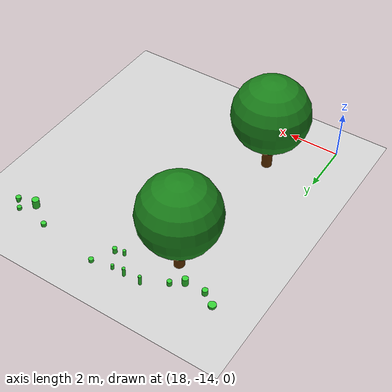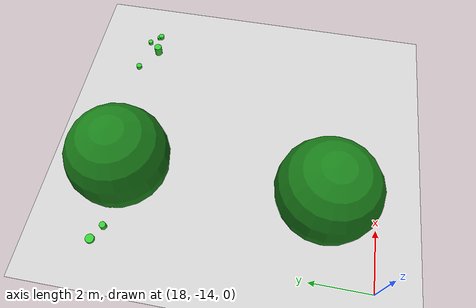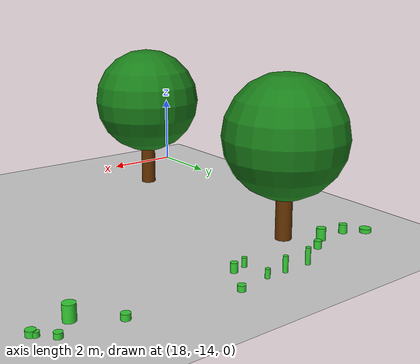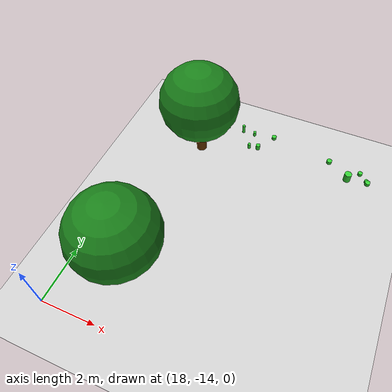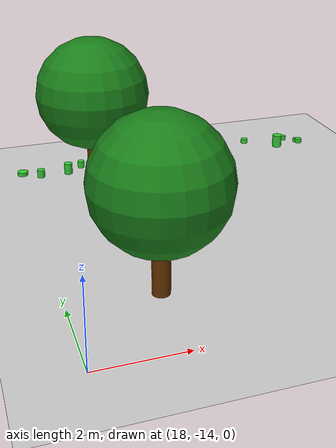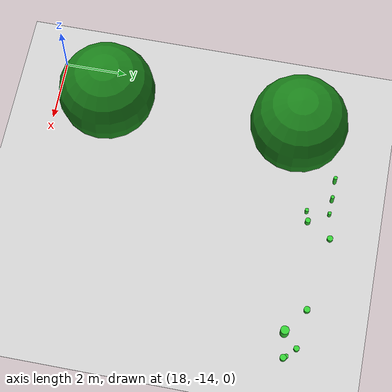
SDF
<sdf version="1.6">
 <world name="street_park_world">
  <include><uri>model://sun</uri></include>
  <include><uri>model://ground_plane</uri></include>
  <model name="tree_25">
   <pose>20 -6 0 0 0 0</pose>
   <static>true</static>
   <link name="trunk">
    <pose>0 0 1 0 0 0</pose>
    <collision name="collision">
     <geometry><cylinder><radius>0.2</radius><length>2</length></cylinder></geometry>
    </collision>
    <visual name="visual">
     <geometry><cylinder><radius>0.2</radius><length>2</length></cylinder></geometry>
     <material><ambient>0.4 0.2 0.0 1</ambient></material>
    </visual>
   </link>
   <link name="leaves">
    <pose>0 0 2.5 0 0 0</pose>
    <collision name="collision"><geometry><sphere><radius>1.5</radius></sphere></geometry></collision>
    <visual name="visual">
     <geometry><sphere><radius>1.5</radius></sphere></geometry>
     <material><ambient>0.1 0.5 0.1 1</ambient></material>
    </visual>
   </link>
  </model>
  <model name="tree_27">
   <pose>20 -12 0 0 0 0</pose>
   <static>true</static>
   <link name="trunk">
    <pose>0 0 1 0 0 0</pose>
    <collision name="collision">
     <geometry><cylinder><radius>0.2</radius><length>2</length></cylinder></geometry>
    </collision>
    <visual name="visual">
     <geometry><cylinder><radius>0.2</radius><length>2</length></cylinder></geometry>
     <material><ambient>0.4 0.2 0.0 1</ambient></material>
    </visual>
   </link>
   <link name="leaves">
    <pose>0 0 2.5 0 0 0</pose>
    <collision name="collision"><geometry><sphere><radius>1.5</radius></sphere></geometry></collision>
    <visual name="visual">
     <geometry><sphere><radius>1.5</radius></sphere></geometry>
     <material><ambient>0.1 0.5 0.1 1</ambient></material>
    </visual>
   </link>
  </model>
  <model name="weed_1">
   <pose>21.28240927476112 -4.552620717607924 0.18382693515572684 0 0 0</pose>
   <static>true</static>
   <link name="link">
    <collision name="collision">
     <geometry>
      <cylinder><radius>0.058693883262941615</radius><length>0.3676538703114537</length></cylinder>
     </geometry>
    </collision>
    <visual name="visual">
     <geometry>
      <cylinder><radius>0.058693883262941615</radius><length>0.3676538703114537</length></cylinder>
     </geometry>
     <material><ambient>0.2 0.8 0.2 1</ambient></material>
    </visual>
   </link>
  </model>
  <model name="weed_23">
   <pose>26.28714279266677 -4.908976046480442 0.05952915592279358 0 0 0</pose>
   <static>true</static>
   <link name="link">
    <collision name="collision">
     <geometry>
      <cylinder><radius>0.08816192865065367</radius><length>0.11905831184558716</length></cylinder>
     </geometry>
    </collision>
    <visual name="visual">
     <geometry>
      <cylinder><radius>0.08816192865065367</radius><length>0.11905831184558716</length></cylinder>
     </geometry>
     <material><ambient>0.2 0.8 0.2 1</ambient></material>
    </visual>
   </link>
  </model>
  <model name="weed_45">
   <pose>20.616826451386558 -4.557289633789377 0.19762478170489495 0 0 0</pose>
   <static>true</static>
   <link name="link">
    <collision name="collision">
     <geometry>
      <cylinder><radius>0.05984178711519589</radius><length>0.3952495634097899</length></cylinder>
     </geometry>
    </collision>
    <visual name="visual">
     <geometry>
      <cylinder><radius>0.05984178711519589</radius><length>0.3952495634097899</length></cylinder>
     </geometry>
     <material><ambient>0.2 0.8 0.2 1</ambient></material>
    </visual>
   </link>
  </model>
  <model name="weed_83">
   <pose>25.8637058221924 -5.34866612303586 0.1808250174359135 0 0 0</pose>
   <static>true</static>
   <link name="link">
    <collision name="collision">
     <geometry>
      <cylinder><radius>0.13585932513377816</radius><length>0.361650034871827</length></cylinder>
     </geometry>
    </collision>
    <visual name="visual">
     <geometry>
      <cylinder><radius>0.13585932513377816</radius><length>0.361650034871827</length></cylinder>
     </geometry>
     <material><ambient>0.2 0.8 0.2 1</ambient></material>
    </visual>
   </link>
  </model>
  <model name="weed_85">
   <pose>26.58109492375756 -5.181366317629122 0.05354966520521773 0 0 0</pose>
   <static>true</static>
   <link name="link">
    <collision name="collision">
     <geometry>
      <cylinder><radius>0.06931297883277086</radius><length>0.10709933041043546</length></cylinder>
     </geometry>
    </collision>
    <visual name="visual">
     <geometry>
      <cylinder><radius>0.06931297883277086</radius><length>0.10709933041043546</length></cylinder>
     </geometry>
     <material><ambient>0.2 0.8 0.2 1</ambient></material>
    </visual>
   </link>
  </model>
  <model name="weed_93">
   <pose>21.775507005552882 -4.5611200937938 0.10463322076718964 0 0 0</pose>
   <static>true</static>
   <link name="link">
    <collision name="collision">
     <geometry>
      <cylinder><radius>0.05699738111263102</radius><length>0.2092664415343793</length></cylinder>
     </geometry>
    </collision>
    <visual name="visual">
     <geometry>
      <cylinder><radius>0.05699738111263102</radius><length>0.2092664415343793</length></cylinder>
     </geometry>
     <material><ambient>0.2 0.8 0.2 1</ambient></material>
    </visual>
   </link>
  </model>
  <model name="weed_95">
   <pose>19.777883671255523 -5.07954882450423 0.09639269933129799 0 0 0</pose>
   <static>true</static>
   <link name="link">
    <collision name="collision">
     <geometry>
      <cylinder><radius>0.09083929086192169</radius><length>0.19278539866259597</length></cylinder>
     </geometry>
    </collision>
    <visual name="visual">
     <geometry>
      <cylinder><radius>0.09083929086192169</radius><length>0.19278539866259597</length></cylinder>
     </geometry>
     <material><ambient>0.2 0.8 0.2 1</ambient></material>
    </visual>
   </link>
  </model>
  <model name="weed_101">
   <pose>26.64222841141023 -5.262432045322723 0.06271933050876827 0 0 0</pose>
   <static>true</static>
   <link name="link">
    <collision name="collision">
     <geometry>
      <cylinder><radius>0.10154520099152164</radius><length>0.12543866101753653</length></cylinder>
     </geometry>
    </collision>
    <visual name="visual">
     <geometry>
      <cylinder><radius>0.10154520099152164</radius><length>0.12543866101753653</length></cylinder>
     </geometry>
     <material><ambient>0.2 0.8 0.2 1</ambient></material>
    </visual>
   </link>
  </model>
  <model name="weed_107">
   <pose>22.586802895662558 -4.4219353359963645 0.06598809448453084 0 0 0</pose>
   <static>true</static>
   <link name="link">
    <collision name="collision">
     <geometry>
      <cylinder><radius>0.09251461939427341</radius><length>0.1319761889690617</length></cylinder>
     </geometry>
    </collision>
    <visual name="visual">
     <geometry>
      <cylinder><radius>0.09251461939427341</radius><length>0.1319761889690617</length></cylinder>
     </geometry>
     <material><ambient>0.2 0.8 0.2 1</ambient></material>
    </visual>
   </link>
  </model>
  <model name="weed_117">
   <pose>18.5777227525097 -5.4100796090005705 0.11113990544998803 0 0 0</pose>
   <static>true</static>
   <link name="link">
    <collision name="collision">
     <geometry>
      <cylinder><radius>0.10426111405039154</radius><length>0.22227981089997606</length></cylinder>
     </geometry>
    </collision>
    <visual name="visual">
     <geometry>
      <cylinder><radius>0.10426111405039154</radius><length>0.22227981089997606</length></cylinder>
     </geometry>
     <material><ambient>0.2 0.8 0.2 1</ambient></material>
    </visual>
   </link>
  </model>
  <model name="weed_137">
   <pose>19.351323454452157 -5.393604931019716 0.15359216238994705 0 0 0</pose>
   <static>true</static>
   <link name="link">
    <collision name="collision">
     <geometry>
      <cylinder><radius>0.11272423956010444</radius><length>0.3071843247798941</length></cylinder>
     </geometry>
    </collision>
    <visual name="visual">
     <geometry>
      <cylinder><radius>0.11272423956010444</radius><length>0.3071843247798941</length></cylinder>
     </geometry>
     <material><ambient>0.2 0.8 0.2 1</ambient></material>
    </visual>
   </link>
  </model>
  <model name="weed_149">
   <pose>18.10653752989814 -5.113223993941341 0.05152266716580157 0 0 0</pose>
   <static>true</static>
   <link name="link">
    <collision name="collision">
     <geometry>
      <cylinder><radius>0.14480625777770312</radius><length>0.10304533433160314</length></cylinder>
     </geometry>
    </collision>
    <visual name="visual">
     <geometry>
      <cylinder><radius>0.14480625777770312</radius><length>0.10304533433160314</length></cylinder>
     </geometry>
     <material><ambient>0.2 0.8 0.2 1</ambient></material>
    </visual>
   </link>
  </model>
  <model name="weed_247">
   <pose>21.804211328878424 -5.283667936626231 0.11223267911552105 0 0 0</pose>
   <static>true</static>
   <link name="link">
    <collision name="collision">
     <geometry>
      <cylinder><radius>0.05990216347105285</radius><length>0.2244653582310421</length></cylinder>
     </geometry>
    </collision>
    <visual name="visual">
     <geometry>
      <cylinder><radius>0.05990216347105285</radius><length>0.2244653582310421</length></cylinder>
     </geometry>
     <material><ambient>0.2 0.8 0.2 1</ambient></material>
    </visual>
   </link>
  </model>
  <model name="weed_261">
   <pose>25.02153353827825 -4.781466859347131 0.06635810150057683 0 0 0</pose>
   <static>true</static>
   <link name="link">
    <collision name="collision">
     <geometry>
      <cylinder><radius>0.10038386897858213</radius><length>0.13271620300115367</length></cylinder>
     </geometry>
    </collision>
    <visual name="visual">
     <geometry>
      <cylinder><radius>0.10038386897858213</radius><length>0.13271620300115367</length></cylinder>
     </geometry>
     <material><ambient>0.2 0.8 0.2 1</ambient></material>
    </visual>
   </link>
  </model>
  <model name="weed_285">
   <pose>22.1500585805136 -5.198813967953084 0.11297487406467549 0 0 0</pose>
   <static>true</static>
   <link name="link">
    <collision name="collision">
     <geometry>
      <cylinder><radius>0.08408959817693328</radius><length>0.22594974812935098</length></cylinder>
     </geometry>
    </collision>
    <visual name="visual">
     <geometry>
      <cylinder><radius>0.08408959817693328</radius><length>0.22594974812935098</length></cylinder>
     </geometry>
     <material><ambient>0.2 0.8 0.2 1</ambient></material>
    </visual>
   </link>
  </model>
 </world>
</sdf>
